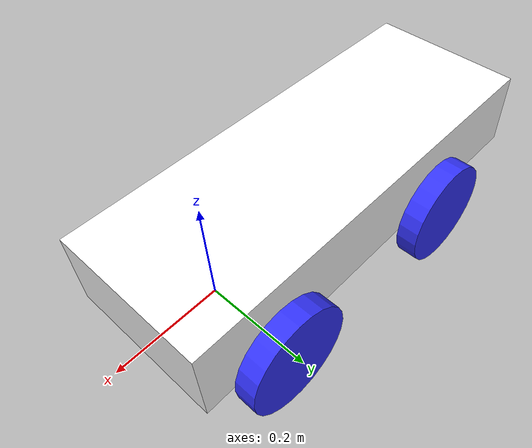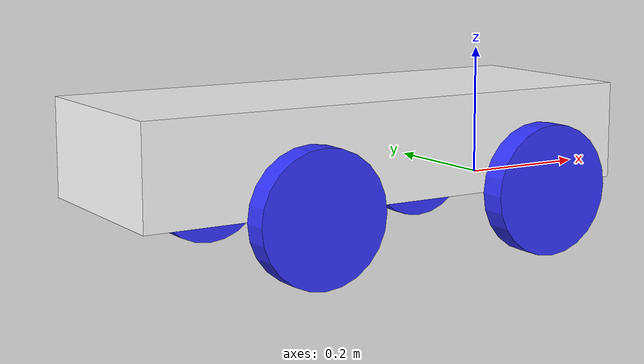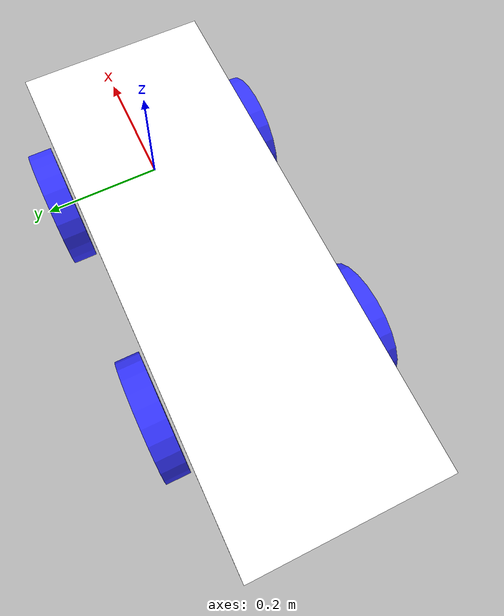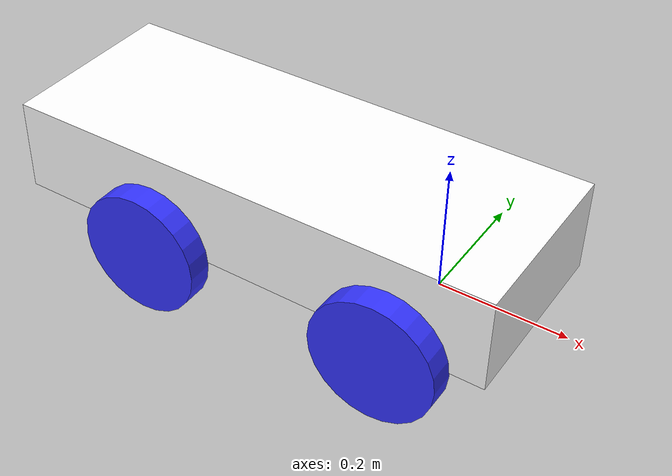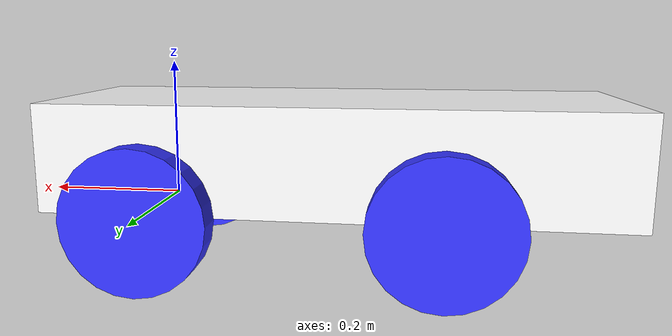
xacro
<?xml version="1.0"?>
<robot xmlns:xacro="http://www.ros.org/wiki/xacro" >

    <xacro:include filename = "inertial_macros.xacro" />

    <material name="white">
        <color rgba="1 1 1 1" />
    </material>

    <material name="orange">
        <color rgba="1 0.3 0.1 1"/>
    </material>

    <material name="blue">
        <color rgba="0.2 0.2 1 1"/>
    </material>

    <material name="black">
        <color rgba="0 0 0 1"/>
    </material>

    <material name="red">
        <color rgba="1 0 0 1"/>
    </material>

    <!-- BASIC LINK -->s
    <link name = "base_link">

    </link>

    <joint name = "chassis_joint" type="fixed">
        <parent link = "base_link"/>
        <child link = "chassis"/>
        <origin xyz = "-0.4 0 0"/>
    </joint>

    <!-- CHASSIS LINK -->
    <link name = "chassis">
        <visual>
            <origin xyz = "0.15 0 0.075"/>
            <geometry>
                <box size = "0.8 0.3 0.15"/>
            </geometry>
            <material name = "white"/>
        </visual>
        <collision>
            <origin xyz = "0.15 0 0.075"/>
            <geometry>
                <box size = "0.8 0.3 0.15"/>
            </geometry>
        </collision>
        <xacro:inertial_box mass="0.5" x="0.3" y="0.3" z="0.15">
            <origin xyz="0.15 0 0.075" rpy="0 0 0"/>
        </xacro:inertial_box>
    </link>

    <!-- LEFT BACK LINK -->
    <joint name = "left_wheel_joint_back" type = "continuous">
        <parent link = "base_link"/>
        <child link = "left_wheel_back" />
        <origin xyz = "0 0.175 0" rpy = "-${pi/2} 0 0"/>
        <axis xyz = "0 0 1"/>
    </joint>

    <link name = "left_wheel_back">
        <visual>
            <geometry>
                <cylinder radius = "0.1" length = "0.04" />
            </geometry>
            <material name = "blue" />
        </visual>
        <collision>
            <geometry>
                <cylinder radius = "0.1" length = "0.04" />
            </geometry>
        </collision>
        <xacro:inertial_cylinder mass="0.1" length="0.04" radius="0.1">
            <origin xyz="0 0 0" rpy="0 0 0"/>
        </xacro:inertial_cylinder>
    </link>

    <!-- RIGHT BACK LINK -->
    <joint name = "right_wheel_joint_back" type = "continuous">
        <parent link = "base_link"/>
        <child link = "right_wheel_back" />
        <origin xyz = "0 -0.175 0" rpy = "${pi/2} 0 0"/>
        <axis xyz = "0 0 -1"/>
    </joint>

    <link name = "right_wheel_back">
        <visual>
            <geometry>
                <cylinder radius = "0.1" length = "0.04" />
            </geometry>
            <material name = "blue" />
        </visual>
        <collision>
            <geometry>
                <cylinder radius = "0.1" length = "0.04" />
            </geometry>
        </collision>
        <xacro:inertial_cylinder mass="0.1" length="0.04" radius="0.1">
            <origin xyz="0 0 0" rpy="0 0 0"/>
        </xacro:inertial_cylinder>
    </link>

    <!-- LEFT FRONT LINK -->
    <joint name = "left_wheel_joint_front" type = "continuous">
        <parent link = "chassis"/>
        <child link = "left_wheel_front" />
        <origin xyz = "0 0.175 0" rpy = "-${pi/2} 0 0"/>
        <axis xyz = "0 0 1"/>
    </joint>

    <link name = "left_wheel_front">
        <visual>
            <geometry>
                <cylinder radius = "0.1" length = "0.04" />
            </geometry>
            <material name = "blue" />
        </visual>
        <collision>
            <geometry>
                <cylinder radius = "0.1" length = "0.04" />
            </geometry>
        </collision>
        <xacro:inertial_cylinder mass="0.1" length="0.04" radius="0.1">
            <origin xyz="0 0 0" rpy="0 0 0"/>
        </xacro:inertial_cylinder>
    </link>

    <!-- RIGHT FRONT LINK -->
    <joint name = "right_wheel_joint_front" type = "continuous">
        <parent link = "chassis"/>
        <child link = "right_wheel_front" />
        <origin xyz = "0 -0.175 0" rpy = "${pi/2} 0 0"/>
        <axis xyz = "0 0 -1"/>
    </joint>

    <link name = "right_wheel_front">
        <visual>
            <geometry>
                <cylinder radius = "0.1" length = "0.04" />
            </geometry>
            <material name = "blue" />
        </visual>
        <collision>
            <geometry>
                <cylinder radius = "0.1" length = "0.04" />
            </geometry>
        </collision>
        <xacro:inertial_cylinder mass="0.1" length="0.04" radius="0.1">
            <origin xyz="0 0 0" rpy="0 0 0"/>
        </xacro:inertial_cylinder>
    </link>

</robot>
